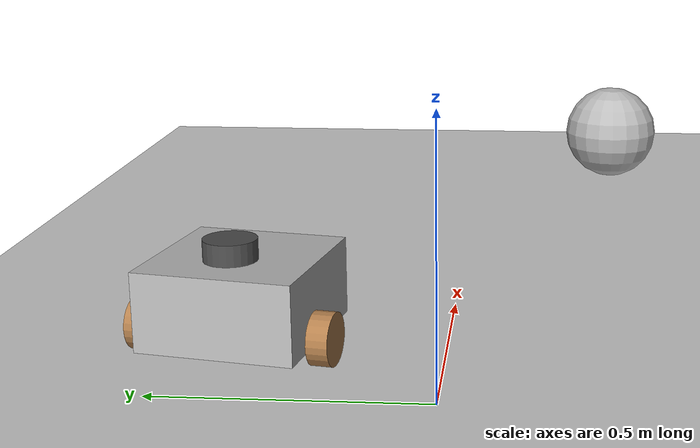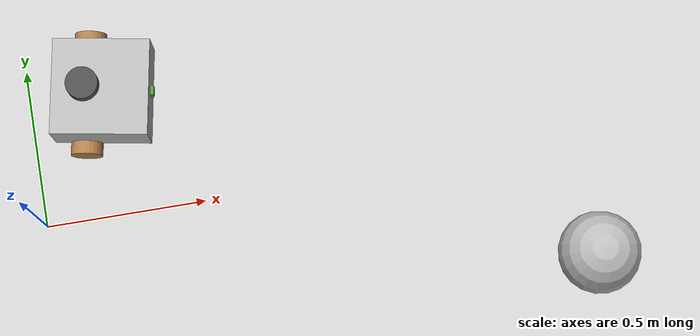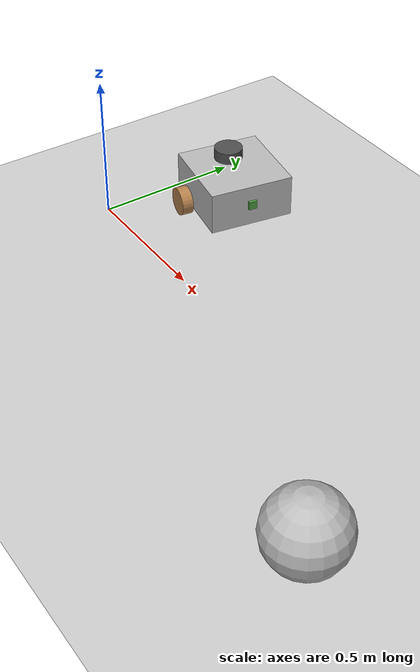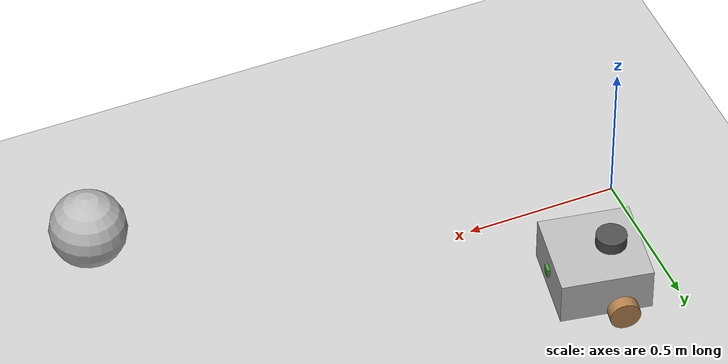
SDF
<sdf version="1.7">
 <world name="default">
  <light name="sun" type="directional">
   <pose>0 0 10 0 -0 0</pose>
   <diffuse>0.8 0.8 0.8 1</diffuse>
   <specular>0.2 0.2 0.2 1</specular>
   <attenuation>
    <range>1000</range>
    <constant>0.9</constant>
    <linear>0.01</linear>
    <quadratic>0.001</quadratic>
   </attenuation>
   <direction>-0.5 0.1 -0.9</direction>
   <spot><inner_angle>0</inner_angle><outer_angle>0</outer_angle><falloff>0</falloff></spot>
  </light>
  <model name="ground_plane">
   <static>1</static>
   <link name="link">
    <collision name="collision">
     <geometry><plane><normal>0 0 1</normal><size>100 100</size></plane></geometry>
     <surface>
      <contact><collide_bitmask>65535</collide_bitmask></contact>
      <friction><ode><mu>100</mu><mu2>50</mu2></ode></friction>
     </surface>
    </collision>
    <visual name="visual">
     <cast_shadows>0</cast_shadows>
     <geometry><plane><normal>0 0 1</normal><size>100 100</size></plane></geometry>
     <material>
      <script><uri>file://media/materials/scripts/gazebo.material</uri><name>Gazebo/Grey</name></script>
     </material>
    </visual>
   </link>
  </model>
  <gravity>0 0 -9.8</gravity>
  <magnetic_field>6e-06 2.3e-05 -4.2e-05</magnetic_field>
  <atmosphere type="adiabatic"/>
  <physics type="ode">
   <max_step_size>0.001</max_step_size>
   <real_time_factor>1</real_time_factor>
   <real_time_update_rate>1000</real_time_update_rate>
  </physics>
  <scene><ambient>0.4 0.4 0.4 1</ambient><background>0.7 0.7 0.7 1</background><shadows>1</shadows></scene>
  <audio><device>default</device></audio>
  <spherical_coordinates>
   <surface_model>EARTH_WGS84</surface_model>
   <latitude_deg>0</latitude_deg>
   <longitude_deg>0</longitude_deg>
   <elevation>0</elevation>
   <heading_deg>0</heading_deg>
  </spherical_coordinates>
  <model name="robbo_pkg">
   <link name="base_link">
    <inertial>
     <pose>0.055714 0 0.061429 0 -0 0</pose>
     <mass>0.7</mass>
     <inertia>
      <ixx>0.0061369</ixx>
      <ixy>0</ixy>
      <ixz>0.00102071</ixz>
      <iyy>0.00717405</iyy>
      <iyz>0</iyz>
      <izz>0.00876214</izz>
     </inertia>
    </inertial>
    <collision name="base_link_fixed_joint_lump__chassis_collision">
     <pose>0.05 0 0.055 0 -0 0</pose>
     <geometry><box><size>0.3 0.3 0.15</size></box></geometry>
    </collision>
    <collision name="base_link_fixed_joint_lump__caster_wheel_collision_1">
     <pose>0.14 0 0 0 -0 0</pose>
     <geometry><sphere><radius>0.05</radius></sphere></geometry>
     <surface><friction><ode><mu>0.001</mu><mu2>0.001</mu2></ode></friction></surface>
    </collision>
    <collision name="base_link_fixed_joint_lump__laser_frame_collision_2">
     <pose>0 0 0.155 0 -0 0</pose>
     <geometry><cylinder><length>0.04</length><radius>0.05</radius></cylinder></geometry>
    </collision>
    <visual name="base_link_fixed_joint_lump__chassis_visual">
     <pose>0.05 0 0.055 0 -0 0</pose>
     <geometry><box><size>0.3 0.3 0.15</size></box></geometry>
     <material>
      <script><name>Gazebo/BuildingFrame</name><uri>file://media/materials/scripts/gazebo.material</uri></script>
     </material>
    </visual>
    <visual name="base_link_fixed_joint_lump__camera_link_visual_1">
     <pose>0.205 0 0.06 0 -0 0</pose>
     <geometry><box><size>0.01 0.03 0.03</size></box></geometry>
     <material>
      <script><name>Gazebo/Grass</name><uri>file://media/materials/scripts/gazebo.material</uri></script>
     </material>
    </visual>
    <visual name="base_link_fixed_joint_lump__caster_wheel_visual_2">
     <pose>0.14 0 0 0 -0 0</pose>
     <geometry><sphere><radius>0.05</radius></sphere></geometry>
     <material>
      <script><name>Gazebo/CloudySky</name><uri>file://media/materials/scripts/gazebo.material</uri></script>
     </material>
    </visual>
    <visual name="base_link_fixed_joint_lump__laser_frame_visual_3">
     <pose>0 0 0.155 0 -0 0</pose>
     <geometry><cylinder><length>0.04</length><radius>0.05</radius></cylinder></geometry>
     <material>
      <script><name>Gazebo/Road</name><uri>file://media/materials/scripts/gazebo.material</uri></script>
     </material>
    </visual>
    <sensor name="camera" type="camera">
     <visualize>1</visualize>
     <update_rate>10</update_rate>
     <camera>
      <horizontal_fov>1.089</horizontal_fov>
      <image><format>R8G8B8</format><width>640</width><height>480</height></image>
      <clip><near>0.05</near><far>8</far></clip>
     </camera>
     <plugin name="camera_controller" filename="libgazebo_ros_camera.so">
      <frame_name>camera_link_optical</frame_name>
     </plugin>
     <pose>0.205 0 0.06 0 -0 0</pose>
    </sensor>
    <sensor name="laser" type="ray">
     <visualize>0</visualize>
     <update_rate>10</update_rate>
     <ray>
      <scan>
       <horizontal>
        <samples>360</samples>
        <min_angle>-3.14</min_angle>
        <max_angle>3.14</max_angle>
        <resolution>1</resolution>
       </horizontal>
       <vertical><samples>1</samples><min_angle>0</min_angle><max_angle>0</max_angle></vertical>
      </scan>
      <range><min>0.3</min><max>12</max></range>
     </ray>
     <plugin name="laser_controller" filename="libgazebo_ros_ray_sensor.so">
      <ros><argument>~/out:=scan</argument></ros>
      <output_type>sensor_msgs/LaserScan</output_type>
      <frame_name>laser_frame</frame_name>
     </plugin>
     <pose>0 0 0.155 0 -0 0</pose>
    </sensor>
   </link>
   <joint name="left_wheel_joint" type="revolute">
    <pose relative_to="base_link">0 0.175 0 -1.5708 0 0</pose>
    <parent>base_link</parent>
    <child>left_wheel</child>
    <axis>
     <xyz>0 0 1</xyz>
     <limit><lower>-1e+16</lower><upper>1e+16</upper></limit>
     <dynamics><spring_reference>0</spring_reference><spring_stiffness>0</spring_stiffness></dynamics>
    </axis>
   </joint>
   <link name="left_wheel">
    <pose relative_to="left_wheel_joint">0 0 0 0 -0 0</pose>
    <inertial>
     <mass>0.1</mass>
     <inertia>
      <ixx>6.08333e-05</ixx>
      <ixy>0</ixy>
      <ixz>0</ixz>
      <iyy>6.08333e-05</iyy>
      <iyz>0</iyz>
      <izz>8e-05</izz>
     </inertia>
    </inertial>
    <collision name="left_wheel_collision">
     <geometry><cylinder><length>0.04</length><radius>0.05</radius></cylinder></geometry>
    </collision>
    <visual name="left_wheel_visual">
     <geometry><cylinder><length>0.04</length><radius>0.05</radius></cylinder></geometry>
     <material>
      <script><name>Gazebo/Wood</name><uri>file://media/materials/scripts/gazebo.material</uri></script>
     </material>
    </visual>
   </link>
   <joint name="right_wheel_joint" type="revolute">
    <pose relative_to="base_link">0 -0.175 0 1.5708 -0 0</pose>
    <parent>base_link</parent>
    <child>right_wheel</child>
    <axis>
     <xyz>0 0 -1</xyz>
     <limit><lower>-1e+16</lower><upper>1e+16</upper></limit>
     <dynamics><spring_reference>0</spring_reference><spring_stiffness>0</spring_stiffness></dynamics>
    </axis>
   </joint>
   <link name="right_wheel">
    <pose relative_to="right_wheel_joint">0 0 0 0 -0 0</pose>
    <inertial>
     <mass>0.1</mass>
     <inertia>
      <ixx>6.08333e-05</ixx>
      <ixy>0</ixy>
      <ixz>0</ixz>
      <iyy>6.08333e-05</iyy>
      <iyz>0</iyz>
      <izz>8e-05</izz>
     </inertia>
    </inertial>
    <collision name="right_wheel_collision">
     <geometry><cylinder><length>0.04</length><radius>0.05</radius></cylinder></geometry>
    </collision>
    <visual name="right_wheel_visual">
     <geometry><cylinder><length>0.04</length><radius>0.05</radius></cylinder></geometry>
     <material>
      <script><name>Gazebo/Wood</name><uri>file://media/materials/scripts/gazebo.material</uri></script>
     </material>
    </visual>
   </link>
   <static>0</static>
   <plugin name="gazebo_ros2_control" filename="libgazebo_ros2_control.so">
    <parameters>/home/fab/ros2_humble/src/robbo_pkg/config/controllers.yaml</parameters>
   </plugin>
   <pose>0.191581 0.385426 0.05 -0 1e-06 -0.173653</pose>
  </model>
  <model name="Untitled_0">
   <model name="frc2016_ball">
    <link name="link">
     <inertial>
      <mass>0.213</mass>
      <inertia>
       <ixx>0.00322667</ixx>
       <ixy>0</ixy>
       <ixz>0</ixz>
       <iyy>0.00322667</iyy>
       <iyz>0</iyz>
       <izz>0.00322667</izz>
      </inertia>
     </inertial>
     <visual name="visual"><geometry><sphere><radius>0.127</radius></sphere></geometry></visual>
     <collision name="collision">
      <geometry><sphere><radius>0.127</radius></sphere></geometry>
      <surface>
       <bounce><restitution_coefficient>0.15937</restitution_coefficient><threshold>0</threshold></bounce>
       <contact><ode><max_vel>100</max_vel><min_depth>0.001</min_depth></ode></contact>
      </surface>
     </collision>
    </link>
   </model>
   <static>0</static>
   <pose>1.66349 -0.376201 0.127 0 -0 0</pose>
  </model>
 </world>
</sdf>
